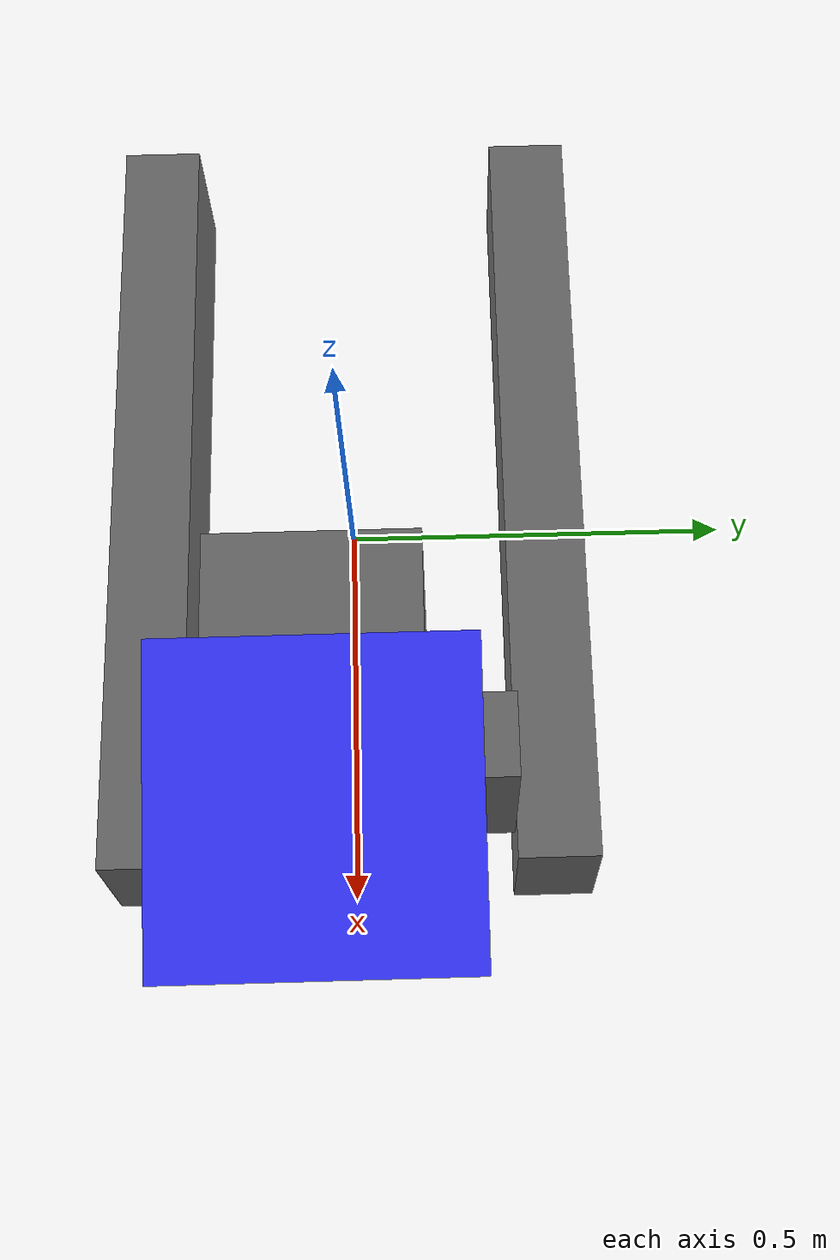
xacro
<?xml version="1.0"?>
<robot xmlns:xacro="http://www.ros.org/wiki/xacro" name="nrmc_robot">

    <xacro:include filename="base_include.xacro" />

    <link name="world"></link>

    <link name="right_tread">
        <visual>
            <geometry>
                <box size="1.0 0.1 0.2"/>
            </geometry>
            <origin rpy="0 0 0" xyz="0 0 0"/>
            <material name="gray"/>
        </visual>
        <collision>
            <geometry>
                 <box size="1.0 0.1 0.2"/>
            </geometry>
            <origin rpy="0 0 0" xyz="0 0 0"/>
        </collision>
        <xacro:inertial_box mass="1" x="1.0" y="0.1" z="0.2">
            <origin rpy="0 0 0" xyz="0 0 0"/>
        </xacro:inertial_box>
    </link>

    <link name="left_tread">
        <visual>
            <geometry>
                <box size="1.0 0.1 0.2"/>
            </geometry>
            <material name="gray"/>
        </visual>
        <collision>
            <geometry>
                 <box size="1.0 0.1 0.2"/>
            </geometry>
            <origin rpy="0 0 0" xyz="0 0 0"/>
        </collision>
        <xacro:inertial_box mass="1" x="1.0" y="0.1" z="0.2">
            <origin rpy="0 0 0" xyz="0 0 0"/>
        </xacro:inertial_box>
    </link>

    <link name="left_arm_ligature">
        <visual>
            <geometry>
                <box size="0.25 0.05 0.1"/>
            </geometry>
            <material name="gray"/>
        </visual>
        <collision>
            <geometry>
                 <box size="0.25 0.05 0.1"/>
            </geometry>
            <origin rpy="0 0 0" xyz="0 0 0"/>
        </collision>
        <xacro:inertial_box mass="1" x="0.25" y="0.05" z="0.1">
            <origin rpy="0 0 0" xyz="0 0 0"/>
        </xacro:inertial_box>
    </link>

    <link name="right_arm_ligature">
        <visual>
            <geometry>
                <box size="0.25 0.05 0.1"/>
            </geometry>
            <material name="gray"/>
        </visual>
        <collision>
            <geometry>
                 <box size="0.25 0.05 0.1"/>
            </geometry>
            <origin rpy="0 0 0" xyz="0 0 0"/>
        </collision>
        <xacro:inertial_box mass="1" x="0.25" y="0.05" z="0.1">
            <origin rpy="0 0 0" xyz="0 0 0"/>
        </xacro:inertial_box>
    </link>

    <link name="arm">
        <visual>
            <origin xyz="0.2 0 0" rpy="0 0 0"/>
            <geometry>
                <box size="0.6 0.2 0.1"/>
            </geometry>
            <material name="gray"/>
        </visual>
        <collision>
            <origin xyz="0.2 0 0" rpy="0 0 0"/>
            <geometry>
                <box size="0.6 0.2 0.1"/>
            </geometry>
        </collision>
        <xacro:inertial_box mass="0.5" x="0.6" y="0.2" z="0.1">
            <origin xyz="0.2 0 0" rpy="0 0 0"/>
        </xacro:inertial_box>
    </link>

    <link name="bucket">
        <visual>
            <origin xyz="0.15 0 0" rpy="0 0 0"/>
            <geometry>
                <box size="0.3 0.3 0.01"/>
            </geometry>
            <material name="blue"/>
        </visual>
        <collision>
            <geometry>
                <box size="0.3 0.3 0.01"/>
            </geometry>
        </collision>
        <xacro:inertial_box mass="0.1" x="0.3" y="0.3" z="0.01">
            <origin xyz="0.15 0 0" rpy="0 0 0"/>
        </xacro:inertial_box>
    </link>

    <joint name="right_arm_ligature_to_arm" type="revolute">
        <parent link="right_arm_ligature"/>
        <child link="arm"/>
        <origin rpy="0 0 0" xyz="0.10 -0.175 0"/>
        <axis xyz="0 1 0"/>
        <limit lower="${-pi/3}" upper="${pi}" effort="100" velocity="100"/>
    </joint>

    <joint name="right_tread_to_right_arm_ligature" type="fixed">
        <parent link="right_tread"/>
        <child link="right_arm_ligature"/>
        <origin rpy="0 -1.57 0" xyz="0.4 -0.075 0.15"/>
    </joint>

    <joint name="left_tread_to_left_arm_ligature" type="fixed">
        <parent link="left_tread"/>
        <child link="left_arm_ligature"/>
        <origin rpy="0 -1.57 0" xyz="0.4 0.075 0.15"/>
    </joint>

    <joint name="arm_to_bucket" type="revolute">
        <parent link="arm" />
        <child link="bucket" />
        <origin rpy="0 0 0" xyz="0.5 0 -0.05"/>
        <axis xyz="0 1 0"/>
        <limit lower="${pi/6}" upper="${pi}" velocity="100" effort="100"/>
    </joint>

    <joint name="world_to_left_tread" type="fixed">
        <parent link="world" />
        <child link="left_tread"/>
        <origin rpy="0 0 0" xyz="0 -0.25 0.1"/>
    </joint>

    <joint name="world_to_right_tread" type="fixed">
        <parent link="world" />
        <child link="right_tread"/>
        <origin rpy="0 0 0" xyz="0 0.25 0.1"/>
    </joint>

    <xacro:include filename="nrmc_gazebo.xacro"/>

</robot>

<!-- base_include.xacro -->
<robot xmlns:xacro="http://www.ros.org/wiki/xacro" >

    <!-- This file is not a robot in and of itself, it just contains some useful tags that could be included in any robot -->

    <!-- Specify some colours -->

    <material name="white">
        <color rgba="1 1 1 1"/>
    </material>

    <material name="orange">
        <color rgba="1 0.3 0.1 1"/>
    </material>

    <material name="blue">
        <color rgba="0.2 0.2 1 1"/>
    </material>

    <material name="gray">
        <color rgba="0.4 0.4 0.4 1"/>
    </material>

    <!-- Specify some standard inertial calculations https://en.wikipedia.org/wiki/List_of_moments_of_inertia -->
    <!-- These make use of xacro's mathematical functionality -->

    <xacro:macro name="inertial_sphere" params="mass radius *origin">
        <inertial>
            <xacro:insert_block name="origin"/>
            <mass value="${mass}" />
            <inertia ixx="${(2/5) * mass * (radius*radius)}" ixy="0.0" ixz="0.0"
                    iyy="${(2/5) * mass * (radius*radius)}" iyz="0.0"
                    izz="${(2/5) * mass * (radius*radius)}" />
        </inertial>
    </xacro:macro>

    <xacro:macro name="inertial_box" params="mass x y z *origin">
        <inertial>
            <xacro:insert_block name="origin"/>
            <mass value="${mass}" />
            <inertia ixx="${(1/12) * mass * (y*y+z*z)}" ixy="0.0" ixz="0.0"
                    iyy="${(1/12) * mass * (x*x+z*z)}" iyz="0.0"
                    izz="${(1/12) * mass * (x*x+y*y)}" />
        </inertial>
    </xacro:macro>

    <xacro:macro name="inertial_cylinder" params="mass length radius *origin">
        <inertial>
            <xacro:insert_block name="origin"/>
            <mass value="${mass}" />
            <inertia ixx="${(1/12) * mass * (3*radius*radius + length*length)}" ixy="0.0" ixz="0.0"
                    iyy="${(1/12) * mass * (3*radius*radius + length*length)}" iyz="0.0"
                    izz="${(1/2) * mass * (radius*radius)}" />
        </inertial>
    </xacro:macro>

</robot>
